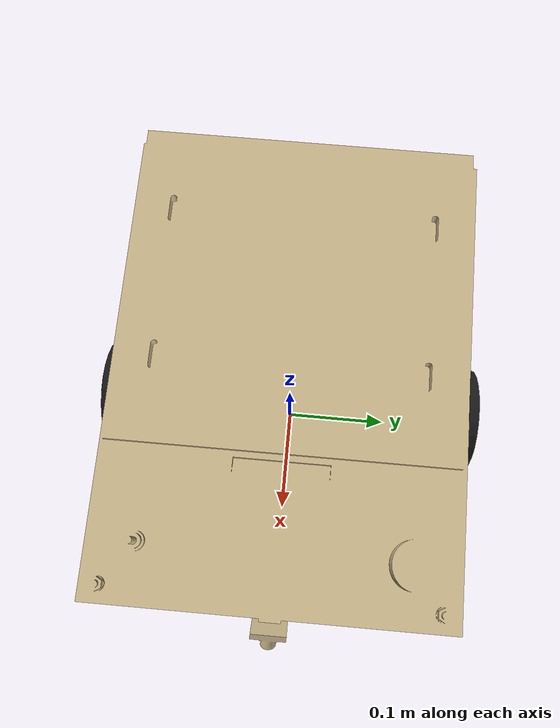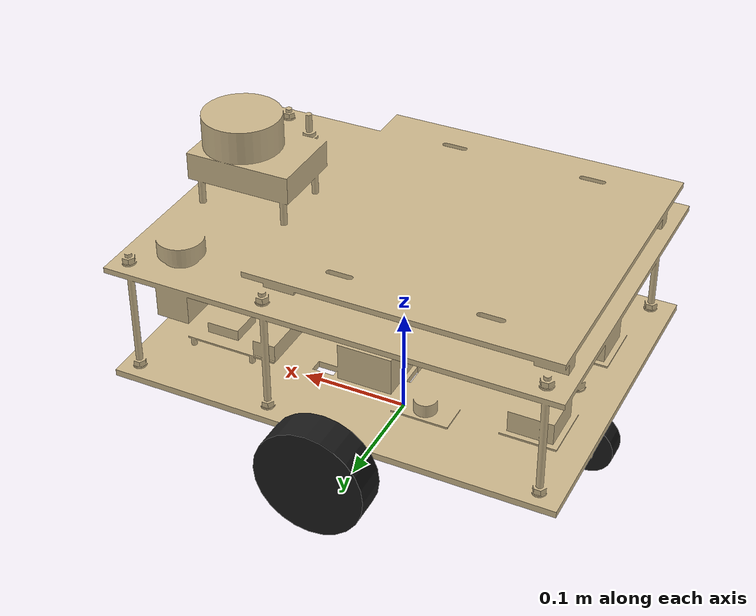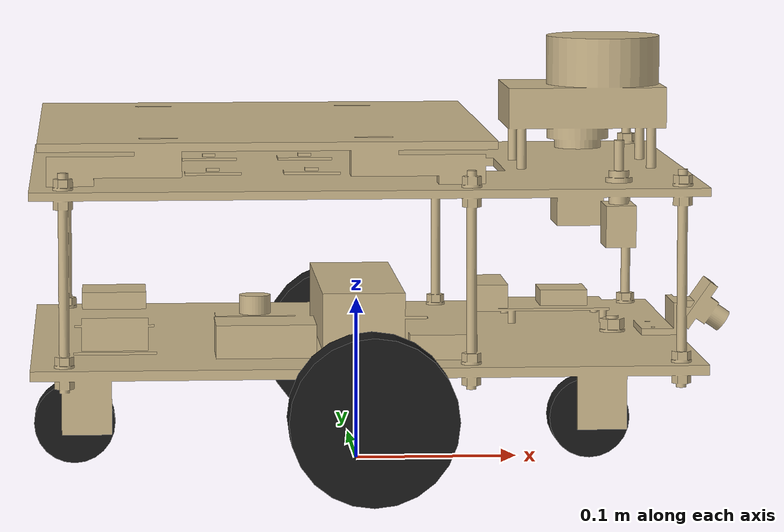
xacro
<?xml version="1.0"?>
<robot name="cargo_bot" xmlns:xacro="http://www.ros.org/wiki/xacro">

  <xacro:arg name="sim" default="false"/>

  <xacro:property name="axle_z" value="0.05"/>          <!-- wheel radius -->
  <xacro:property name="wheel_radius" value="0.05"/>
  <xacro:property name="wheel_width" value="0.03"/>
  <xacro:property name="wheel_y" value="0.165"/>
  <xacro:property name="wheel_mass" value="0.15"/>
  <xacro:property name="body_mass" value="4.5"/>
  <!-- RPLIDAR orientation: if obstacles in front show up BEHIND the robot in RViz, change pi to 0.0 -->
  <xacro:property name="laser_yaw" value="${pi}"/>

  <material name="body"><color rgba="0.80 0.72 0.55 1"/></material>
  <material name="black"><color rgba="0.1 0.1 0.1 1"/></material>

  <link name="base_footprint"/>

  <link name="base_link">
    <!-- the real shape, exported from the CAD model (cad/export_ros_mesh.py), in mm -->
    <visual>
      <origin xyz="0 0 0"/>
      <geometry><mesh filename="package://cargo_bot/meshes/cargo_bot_body.stl" scale="0.001 0.001 0.001"/></geometry>
      <material name="body"/>
    </visual>
    <!-- simple box for physics: bottom plate underside (z 0.022) to cargo plate top (z 0.162) -->
    <collision>
      <origin xyz="0 0 0.092"/>
      <geometry><box size="0.40 0.30 0.14"/></geometry>
    </collision>
    <inertial>
      <origin xyz="0 0 0.06"/>
      <mass value="${body_mass}"/>
      <inertia ixx="${body_mass / 12 * (0.30**2 + 0.14**2)}" ixy="0" ixz="0"
               iyy="${body_mass / 12 * (0.40**2 + 0.14**2)}" iyz="0"
               izz="${body_mass / 12 * (0.40**2 + 0.30**2)}"/>
    </inertial>
  </link>

  <joint name="base_joint" type="fixed">
    <parent link="base_footprint"/>
    <child link="base_link"/>
    <origin xyz="0 0 ${axle_z}"/>
  </joint>

  <!-- drive wheels -->
  <xacro:macro name="wheel" params="side y">
    <link name="${side}_wheel_link">
      <visual>
        <origin rpy="${pi/2} 0 0"/>
        <geometry><cylinder radius="${wheel_radius}" length="${wheel_width}"/></geometry>
        <material name="black"/>
      </visual>
      <collision>
        <origin rpy="${pi/2} 0 0"/>
        <geometry><cylinder radius="${wheel_radius}" length="${wheel_width}"/></geometry>
      </collision>
      <inertial>
        <mass value="${wheel_mass}"/>
        <inertia ixx="${wheel_mass / 12 * (3 * wheel_radius**2 + wheel_width**2)}" ixy="0" ixz="0"
                 iyy="${wheel_mass / 2 * wheel_radius**2}" iyz="0"
                 izz="${wheel_mass / 12 * (3 * wheel_radius**2 + wheel_width**2)}"/>
      </inertial>
    </link>
    <joint name="${side}_wheel_joint" type="continuous">
      <parent link="base_link"/>
      <child link="${side}_wheel_link"/>
      <origin xyz="0 ${y} 0"/>
      <axis xyz="0 1 0"/>
    </joint>
  </xacro:macro>
  <xacro:wheel side="left" y="${wheel_y}"/>
  <xacro:wheel side="right" y="${-wheel_y}"/>

  <!-- 50 mm swivel casters: frictionless spheres in simulation -->
  <xacro:macro name="caster" params="name x">
    <link name="${name}_caster_link">
      <visual>
        <origin rpy="${pi/2} 0 0"/>
        <geometry><cylinder radius="0.025" length="0.02"/></geometry>
        <material name="black"/>
      </visual>
      <collision>
        <geometry><sphere radius="0.025"/></geometry>
      </collision>
      <inertial>
        <mass value="0.05"/>
        <inertia ixx="1.25e-5" ixy="0" ixz="0" iyy="1.25e-5" iyz="0" izz="1.25e-5"/>
      </inertial>
    </link>
    <joint name="${name}_caster_joint" type="fixed">
      <parent link="base_link"/>
      <child link="${name}_caster_link"/>
      <origin xyz="${x} 0 -0.025"/>
    </joint>
  </xacro:macro>
  <xacro:caster name="front" x="0.145"/>
  <xacro:caster name="rear" x="-0.175"/>

  <!-- RPLIDAR A1 (frame name must match the lidar driver's frame_id: laser) -->
  <link name="laser"/>
  <joint name="laser_joint" type="fixed">
    <parent link="base_link"/>
    <child link="laser"/>
    <origin xyz="0.153 0 0.20" rpy="0 0 ${laser_yaw}"/>
  </joint>

  <!-- USB camera, tilted 35 degrees down -->
  <link name="camera_link"/>
  <joint name="camera_joint" type="fixed">
    <parent link="base_link"/>
    <child link="camera_link"/>
    <origin xyz="0.212 0 0.048" rpy="0 0.611 0"/>
  </joint>

  <xacro:if value="$(arg sim)">
    <xacro:include filename="$(find cargo_bot)/urdf/cargo_bot.gazebo.xacro"/>
  </xacro:if>
</robot>
